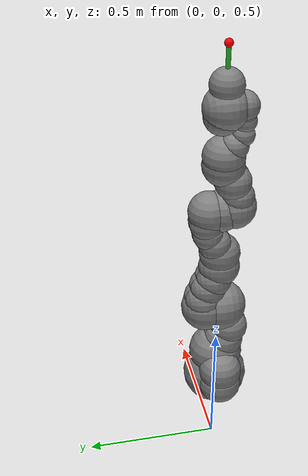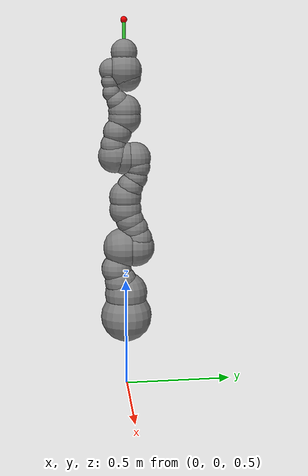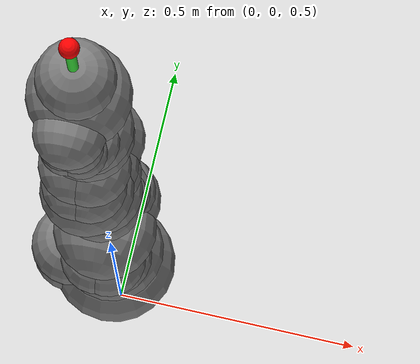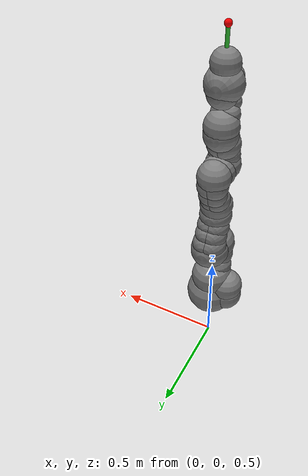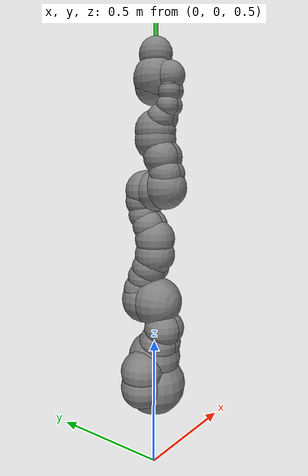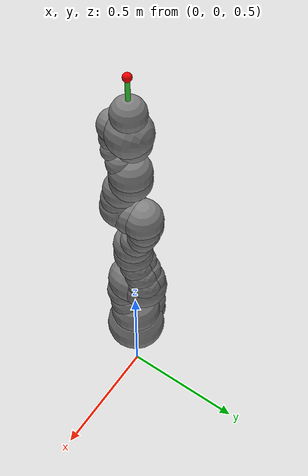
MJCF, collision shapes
<mujoco model="iiwa14">
  <compiler angle="radian" meshdir="assets" autolimits="true"/>

  <option integrator="implicitfast"/>

  <default>
    <default class="iiwa">
      <material specular="0.5" shininess="0.25"/>
      <joint axis="0 0 1"/>
      <general gaintype="fixed" biastype="affine" gainprm="2000" biasprm="0 -2000 -200"/>
      <default class="joint1">
        <joint range="-2.96706 2.96706"/>
        <general ctrlrange="-2.96706 2.96706"/>
        <default class="joint2">
          <joint range="-2.0944 2.0944"/>
          <general ctrlrange="-2.0944 2.0944"/>
        </default>
      </default>
      <default class="joint3">
        <joint range="-3.05433 3.05433"/>
        <general ctrlrange="-3.05433 3.05433"/>
      </default>
      <default class="visual">
        <geom type="mesh" contype="0" conaffinity="0" group="2" material="gray"/>
      </default>
      <default class="collision">
        <geom group="3"/>
      </default>
      <site size="0.001" rgba="1 0 0 1" group="4"/>
    </default>
  </default>

  <asset>
    <material class="iiwa" name="gray" rgba="0.4 0.4 0.4 1"/>
    <material class="iiwa" name="light_gray" rgba="0.6 0.6 0.6 1"/>
    <material class="iiwa" name="black" rgba="0 0 0 1"/>
    <material class="iiwa" name="orange" rgba="1 0.423529 0.0392157 1"/>

    <mesh file="link_0.obj"/>
    <mesh file="link_1.obj"/>
    <mesh file="link_2_orange.obj"/>
    <mesh file="link_2_grey.obj"/>
    <mesh file="link_3.obj"/>
    <mesh file="band.obj"/>
    <mesh file="kuka.obj"/>
    <mesh file="link_4_orange.obj"/>
    <mesh file="link_4_grey.obj"/>
    <mesh file="link_5.obj"/>
    <mesh file="link_6_orange.obj"/>
    <mesh file="link_6_grey.obj"/>
    <mesh file="link_7.obj"/>
  </asset>

  <worldbody>
    <light name="top" pos="0 0 2" mode="trackcom"/>
    <!-- IIWA robot base positioned on table surface (z=0.801m) -->
    <body name="base" childclass="iiwa" pos="0 0 0.801">
      <inertial mass="5" pos="-0.1 0 0.07" diaginertia="0.05 0.06 0.03"/>
      <geom class="visual" mesh="link_0"/>
      <geom class="collision" size="0.12" pos="0 0 0.03"/>
      <geom class="collision" size="0.08" pos="-0.08 0 0.103"/>
      <geom class="collision" size="0.08" pos="-0.08 0 0.04"/>
      <geom class="collision" size="0.1" pos="0 0 0.14"/>
      <body name="link1" pos="0 0 0.1575">
        <inertial mass="5.76" pos="0 -0.03 0.12" diaginertia="0.0333 0.033 0.0123"/>
        <joint name="joint1" class="joint1"/>
        <geom class="visual" mesh="link_1"/>
        <geom class="collision" size="0.08" pos="0 0 -0.0005"/>
        <geom class="collision" size="0.075" pos="0.01 -0.025 0.0425"/>
        <geom class="collision" size="0.075" pos="-0.01 -0.025 0.0425"/>
        <geom class="collision" size="0.07" pos="0.01 -0.045 0.1025"/>
        <geom class="collision" size="0.07" pos="-0.01 -0.045 0.1025"/>
        <body name="link2" pos="0 0 0.2025" quat="0 0 1 1">
          <inertial mass="6.35" pos="0.0003 0.059 0.042" diaginertia="0.0305 0.0304 0.011" quat="0 0 1 1"/>
          <joint name="joint2" class="joint2"/>
          <geom class="visual" material="orange" mesh="link_2_orange"/>
          <geom class="visual" mesh="link_2_grey"/>
          <geom class="collision" size="0.095" pos="0 0 -0.01"/>
          <geom class="collision" size="0.09" pos="0 0 0.045"/>
          <geom class="collision" size="0.07" pos="-0.01 0.04 0.054"/>
          <geom class="collision" size="0.065" pos="-0.01 0.09 0.04"/>
          <geom class="collision" size="0.065" pos="-0.01 0.13 0.02"/>
          <geom class="collision" size="0.07" pos="0.01 0.04 0.054"/>
          <geom class="collision" size="0.065" pos="0.01 0.09 0.04"/>
          <geom class="collision" size="0.065" pos="0.01 0.13 0.02"/>
          <geom class="collision" size="0.075" pos="0 0.18 0"/>
          <body name="link3" pos="0 0.2045 0" quat="0 0 1 1">
            <inertial mass="3.5" pos="0 0.03 0.13" diaginertia="0.025 0.0238 0.0076"/>
            <joint name="joint3" class="joint1"/>
            <geom class="visual" mesh="link_3"/>
            <geom class="visual" material="light_gray" mesh="band"/>
            <geom class="visual" material="black" mesh="kuka"/>
            <geom class="collision" size="0.075" pos="0 0 0.0355"/>
            <geom class="collision" size="0.06" pos="0.01 0.023 0.0855"/>
            <geom class="collision" size="0.055" pos="0.01 0.048 0.1255"/>
            <geom class="collision" size="0.06" pos="0.01 0.056 0.1755"/>
            <geom class="collision" size="0.06" pos="-0.01 0.023 0.0855"/>
            <geom class="collision" size="0.055" pos="-0.01 0.048 0.1255"/>
            <geom class="collision" size="0.06" pos="-0.01 0.056 0.1755"/>
            <geom class="collision" size="0.075" pos="0 0.045 0.2155"/>
            <geom class="collision" size="0.075" pos="0 0 0.2155"/>
            <body name="link4" pos="0 0 0.2155" quat="1 1 0 0">
              <inertial mass="3.5" pos="0 0.067 0.034" diaginertia="0.017 0.0164 0.006" quat="1 1 0 0"/>
              <joint name="joint4" class="joint2"/>
              <geom class="visual" material="orange" mesh="link_4_orange"/>
              <geom class="visual" mesh="link_4_grey"/>
              <geom class="collision" size="0.078" pos="0 0.01 0.046"/>
              <geom class="collision" size="0.06" pos="0.01 0.06 0.052"/>
              <geom class="collision" size="0.065" pos="0.01 0.12 0.034"/>
              <geom class="collision" size="0.06" pos="-0.01 0.06 0.052"/>
              <geom class="collision" size="0.065" pos="-0.01 0.12 0.034"/>
              <geom class="collision" size="0.075" pos="0 0.184 0"/>
              <body name="link5" pos="0 0.1845 0" quat="0 0 1 1">
                <inertial mass="3.5" pos="0.0001 0.021 0.076" diaginertia="0.01 0.0087 0.00449"/>
                <joint name="joint5" class="joint1"/>
                <geom class="visual" mesh="link_5"/>
                <geom class="visual" material="light_gray" mesh="band"/>
                <geom class="visual" material="black" mesh="kuka"/>
                <geom class="collision" size="0.075" pos="0 0 0.0335"/>
                <geom class="collision" size="0.05" pos="-0.012 0.031 0.0755"/>
                <geom class="collision" size="0.05" pos="0.012 0.031 0.0755"/>
                <geom class="collision" size="0.04" pos="-0.012 0.06 0.1155"/>
                <geom class="collision" size="0.04" pos="0.012 0.06 0.1155"/>
                <geom class="collision" size="0.04" pos="-0.01 0.065 0.1655"/>
                <geom class="collision" size="0.04" pos="0.01 0.065 0.1655"/>
                <geom class="collision" size="0.035" pos="-0.012 0.065 0.1855"/>
                <geom class="collision" size="0.035" pos="0.012 0.065 0.1855"/>

                <body name="link6" pos="0 0 0.2155" quat="1 1 0 0">
                  <inertial mass="1.8" pos="0 0.0006 0.0004" diaginertia="0.0049 0.0047 0.0036" quat="1 1 0 0"/>
                  <joint name="joint6" class="joint2"/>
                  <geom class="visual" material="orange" mesh="link_6_orange"/>
                  <geom class="visual" mesh="link_6_grey"/>
                  <geom class="collision" size="0.055" pos="0 0 -0.059"/>
                  <geom class="collision" size="0.065" pos="0 -0.03 0.011"/>
                  <geom class="collision" size="0.08"/>

                  <body name="link7" pos="0 0.081 0" quat="0 0 1 1">
                    <inertial mass="1.2" pos="0 0 0.02" diaginertia="0.001 0.001 0.001"/>
                    <joint name="joint7" class="joint3"/>
                    <geom class="visual" mesh="link_7"/>
                    <geom class="collision" size="0.06" pos="0 0 0.001"/>
                    <site pos="0 0 0.045" name="attachment_site"/>

                    <body name="tool_rod" pos="0 0 0.045">
                      <inertial mass="0.02" pos="0 0 0.05" diaginertia="5e-5 5e-5 1e-5"/>

                      <geom name="tool_rod_geom"
                            type="capsule"
                            fromto="0 0 0 0 0 0.10"
                            size="0.008"
                            rgba="0.2 0.8 0.2 1"
                            contype="1"
                            conaffinity="1"/>

                      <body name="tip_ball" pos="0 0 0.10">
                        <inertial mass="0.02" pos="0 0 0" diaginertia="1e-5 1e-5 1e-5"/>
                        <geom name="tip_ball_geom"
                              type="sphere"
                              size="0.015"
                              rgba="1 0 0 1"
                              contype="1"
                              conaffinity="1"/>
                        <site name="force_sensor_site" pos="0 0 0"/>
                        <site name="tcp_site" pos="0 0 0"/>
                      </body>
                    </body>
                  </body>
                </body>
              </body>
            </body>
          </body>
        </body>
      </body>
    </body>
  </worldbody>

  <sensor>
    <force name="force_sensor" site="force_sensor_site"/>
  </sensor>

  <contact>
    <exclude body1="base" body2="link1"/>
    <exclude body1="base" body2="link2"/>
    <exclude body1="base" body2="link3"/>
    <exclude body1="link1" body2="link3"/>
    <exclude body1="link3" body2="link5"/>
    <exclude body1="link4" body2="link7"/>
    <exclude body1="link5" body2="link7"/>
  </contact>

  <actuator>
    <general name="actuator1" joint="joint1" class="joint1"/>
    <general name="actuator2" joint="joint2" class="joint2"/>
    <general name="actuator3" joint="joint3" class="joint1"/>
    <general name="actuator4" joint="joint4" class="joint2"/>
    <general name="actuator5" joint="joint5" class="joint1"/>
    <general name="actuator6" joint="joint6" class="joint2"/>
    <general name="actuator7" joint="joint7" class="joint3"/>
  </actuator>

  <keyframe>
    <key name="home" qpos="0 0.68 0 -1.5708 0 1.5708 0" ctrl="0 0 0 -1.5708 0 1.5708 0"/>
  </keyframe>
</mujoco>
